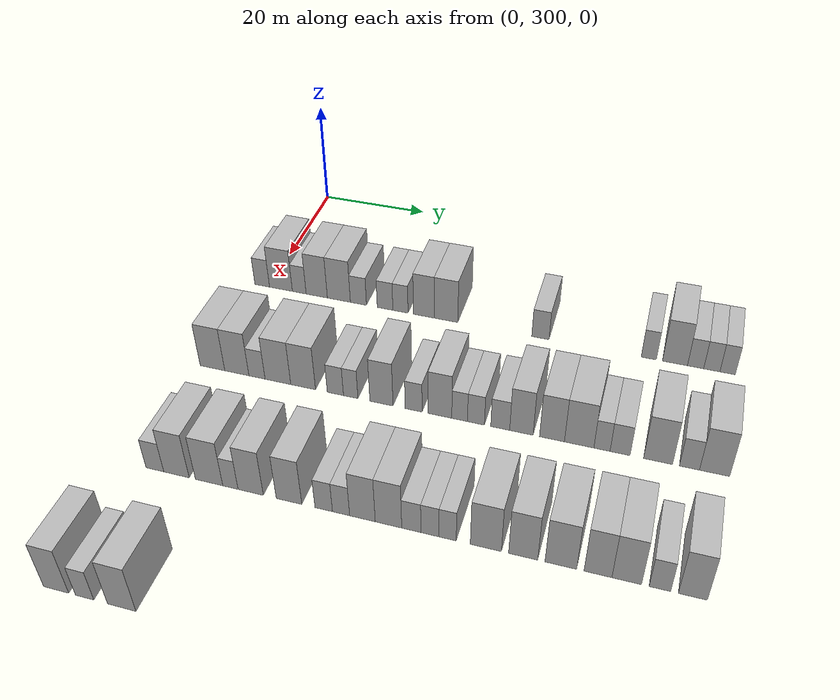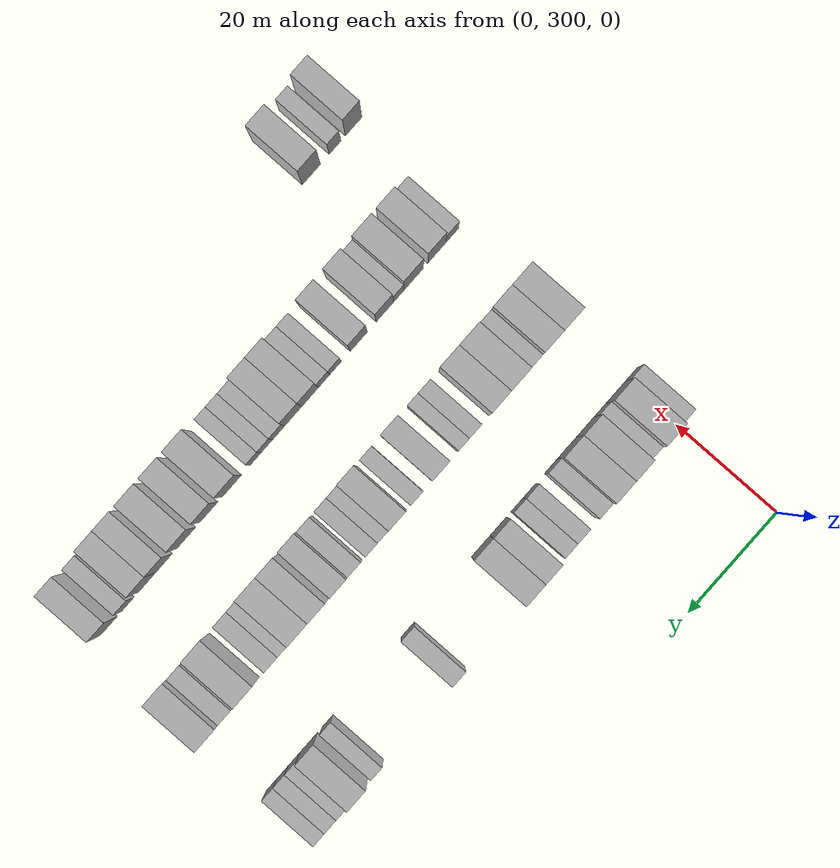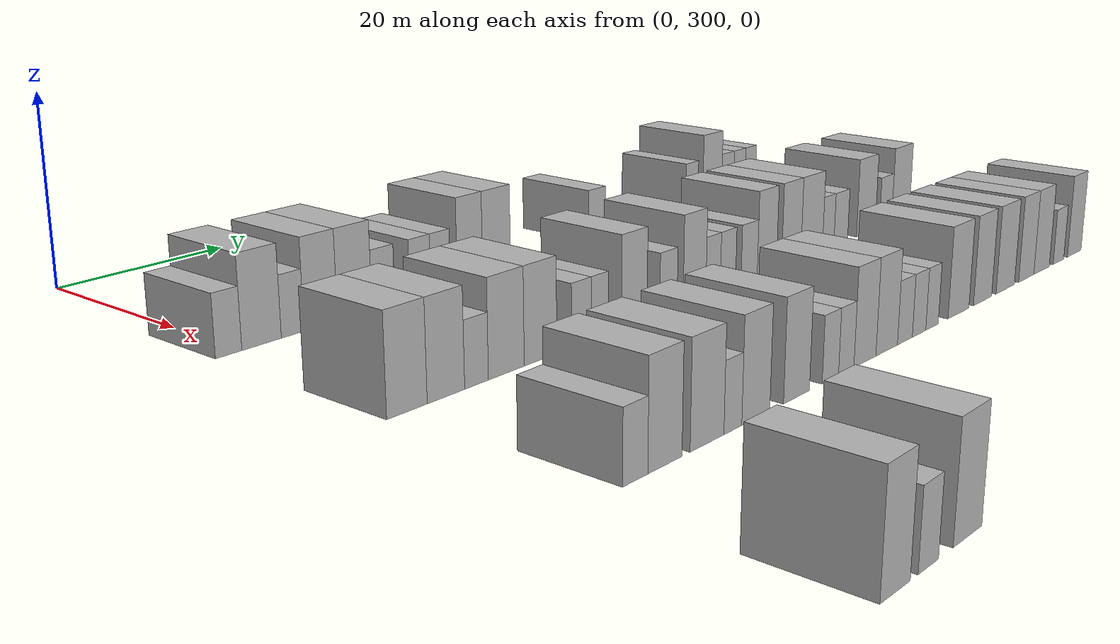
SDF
<sdf version="1.6">
 <world name="default">
  <model name="building_164">
   <static>1</static>
   <pose>25.0000 298.7448 0 0.000000 0.000000 0.000000</pose>
   <link name="link">
    <pose>0 0 3.00 0 0 0</pose>
    <collision name="collision"><geometry><box><size>10.0000 2.8395 6.0000</size></box></geometry></collision>
    <visual name="visual">
     <cast_shadows>0</cast_shadows>
     <geometry><box><size>10.0000 2.8395 6.0000</size></box></geometry>
     <material>
      <script>
       <uri>model://HANNAS_wall/materials/scripts</uri>
       <uri>model://HANNAS_wall/materials/textures</uri>
       <name>vrc/HANNAS_wall</name>
      </script>
     </material>
    </visual>
   </link>
  </model>
  <model name="building_165">
   <static>1</static>
   <pose>25.0000 302.3678 0 0.000000 0.000000 0.000000</pose>
   <link name="link">
    <pose>0 0 4.50 0 0 0</pose>
    <collision name="collision"><geometry><box><size>10.0000 4.4065 9.0000</size></box></geometry></collision>
    <visual name="visual">
     <cast_shadows>0</cast_shadows>
     <geometry><box><size>10.0000 4.4065 9.0000</size></box></geometry>
     <material>
      <script>
       <uri>model://HANNAS_wall/materials/scripts</uri>
       <uri>model://HANNAS_wall/materials/textures</uri>
       <name>vrc/HANNAS_wall</name>
      </script>
     </material>
    </visual>
   </link>
  </model>
  <model name="building_166">
   <static>1</static>
   <pose>25.0000 305.8873 0 0.000000 0.000000 0.000000</pose>
   <link name="link">
    <pose>0 0 3.00 0 0 0</pose>
    <collision name="collision"><geometry><box><size>10.0000 2.6325 6.0000</size></box></geometry></collision>
    <visual name="visual">
     <cast_shadows>0</cast_shadows>
     <geometry><box><size>10.0000 2.6325 6.0000</size></box></geometry>
     <material>
      <script>
       <uri>model://HANNAS_wall/materials/scripts</uri>
       <uri>model://HANNAS_wall/materials/textures</uri>
       <name>vrc/HANNAS_wall</name>
      </script>
     </material>
    </visual>
   </link>
  </model>
  <model name="building_167">
   <static>1</static>
   <pose>25.0000 309.2179 0 0.000000 0.000000 0.000000</pose>
   <link name="link">
    <pose>0 0 4.50 0 0 0</pose>
    <collision name="collision"><geometry><box><size>10.0000 4.0286 9.0000</size></box></geometry></collision>
    <visual name="visual">
     <cast_shadows>0</cast_shadows>
     <geometry><box><size>10.0000 4.0286 9.0000</size></box></geometry>
     <material>
      <script>
       <uri>model://HANNAS_wall/materials/scripts</uri>
       <uri>model://HANNAS_wall/materials/textures</uri>
       <name>vrc/HANNAS_wall</name>
      </script>
     </material>
    </visual>
   </link>
  </model>
  <model name="building_168">
   <static>1</static>
   <pose>25.0000 313.3952 0 0.000000 0.000000 0.000000</pose>
   <link name="link">
    <pose>0 0 4.50 0 0 0</pose>
    <collision name="collision"><geometry><box><size>10.0000 4.3261 9.0000</size></box></geometry></collision>
    <visual name="visual">
     <cast_shadows>0</cast_shadows>
     <geometry><box><size>10.0000 4.3261 9.0000</size></box></geometry>
     <material>
      <script>
       <uri>model://HANNAS_wall/materials/scripts</uri>
       <uri>model://HANNAS_wall/materials/textures</uri>
       <name>vrc/HANNAS_wall</name>
      </script>
     </material>
    </visual>
   </link>
  </model>
  <model name="building_169">
   <static>1</static>
   <pose>25.0000 317.0565 0 0.000000 0.000000 0.000000</pose>
   <link name="link">
    <pose>0 0 3.00 0 0 0</pose>
    <collision name="collision"><geometry><box><size>10.0000 2.9965 6.0000</size></box></geometry></collision>
    <visual name="visual">
     <cast_shadows>0</cast_shadows>
     <geometry><box><size>10.0000 2.9965 6.0000</size></box></geometry>
     <material>
      <script>
       <uri>model://HANNAS_wall/materials/scripts</uri>
       <uri>model://HANNAS_wall/materials/textures</uri>
       <name>vrc/HANNAS_wall</name>
      </script>
     </material>
    </visual>
   </link>
  </model>
  <model name="building_170">
   <static>1</static>
   <pose>25.0000 321.9890 0 0.000000 0.000000 0.000000</pose>
   <link name="link">
    <pose>0 0 3.00 0 0 0</pose>
    <collision name="collision"><geometry><box><size>10.0000 2.8684 6.0000</size></box></geometry></collision>
    <visual name="visual">
     <cast_shadows>0</cast_shadows>
     <geometry><box><size>10.0000 2.8684 6.0000</size></box></geometry>
     <material>
      <script>
       <uri>model://HANNAS_wall/materials/scripts</uri>
       <uri>model://HANNAS_wall/materials/textures</uri>
       <name>vrc/HANNAS_wall</name>
      </script>
     </material>
    </visual>
   </link>
  </model>
  <model name="building_171">
   <static>1</static>
   <pose>25.0000 324.8100 0 0.000000 0.000000 0.000000</pose>
   <link name="link">
    <pose>0 0 3.00 0 0 0</pose>
    <collision name="collision"><geometry><box><size>10.0000 2.7737 6.0000</size></box></geometry></collision>
    <visual name="visual">
     <cast_shadows>0</cast_shadows>
     <geometry><box><size>10.0000 2.7737 6.0000</size></box></geometry>
     <material>
      <script>
       <uri>model://HANNAS_wall/materials/scripts</uri>
       <uri>model://HANNAS_wall/materials/textures</uri>
       <name>vrc/HANNAS_wall</name>
      </script>
     </material>
    </visual>
   </link>
  </model>
  <model name="building_172">
   <static>1</static>
   <pose>25.0000 329.0624 0 0.000000 0.000000 0.000000</pose>
   <link name="link">
    <pose>0 0 4.50 0 0 0</pose>
    <collision name="collision"><geometry><box><size>10.0000 3.7311 9.0000</size></box></geometry></collision>
    <visual name="visual">
     <cast_shadows>0</cast_shadows>
     <geometry><box><size>10.0000 3.7311 9.0000</size></box></geometry>
     <material>
      <script>
       <uri>model://HANNAS_wall/materials/scripts</uri>
       <uri>model://HANNAS_wall/materials/textures</uri>
       <name>vrc/HANNAS_wall</name>
      </script>
     </material>
    </visual>
   </link>
  </model>
  <model name="building_173">
   <static>1</static>
   <pose>25.0000 333.0505 0 0.000000 0.000000 0.000000</pose>
   <link name="link">
    <pose>0 0 4.50 0 0 0</pose>
    <collision name="collision"><geometry><box><size>10.0000 4.2452 9.0000</size></box></geometry></collision>
    <visual name="visual">
     <cast_shadows>0</cast_shadows>
     <geometry><box><size>10.0000 4.2452 9.0000</size></box></geometry>
     <material>
      <script>
       <uri>model://HANNAS_wall/materials/scripts</uri>
       <uri>model://HANNAS_wall/materials/textures</uri>
       <name>vrc/HANNAS_wall</name>
      </script>
     </material>
    </visual>
   </link>
  </model>
  <model name="building_174">
   <static>1</static>
   <pose>25.0000 349.6298 0 0.000000 0.000000 0.000000</pose>
   <link name="link">
    <pose>0 0 3.00 0 0 0</pose>
    <collision name="collision"><geometry><box><size>10.0000 2.9711 6.0000</size></box></geometry></collision>
    <visual name="visual">
     <cast_shadows>0</cast_shadows>
     <geometry><box><size>10.0000 2.9711 6.0000</size></box></geometry>
     <material>
      <script>
       <uri>model://HANNAS_wall/materials/scripts</uri>
       <uri>model://HANNAS_wall/materials/textures</uri>
       <name>vrc/HANNAS_wall</name>
      </script>
     </material>
    </visual>
   </link>
  </model>
  <model name="building_175">
   <static>1</static>
   <pose>25.0000 367.8563 0 0.000000 0.000000 0.000000</pose>
   <link name="link">
    <pose>0 0 3.00 0 0 0</pose>
    <collision name="collision"><geometry><box><size>10.0000 2.4939 6.0000</size></box></geometry></collision>
    <visual name="visual">
     <cast_shadows>0</cast_shadows>
     <geometry><box><size>10.0000 2.4939 6.0000</size></box></geometry>
     <material>
      <script>
       <uri>model://HANNAS_wall/materials/scripts</uri>
       <uri>model://HANNAS_wall/materials/textures</uri>
       <name>vrc/HANNAS_wall</name>
      </script>
     </material>
    </visual>
   </link>
  </model>
  <model name="building_176">
   <static>1</static>
   <pose>25.0000 372.1307 0 0.000000 0.000000 0.000000</pose>
   <link name="link">
    <pose>0 0 4.50 0 0 0</pose>
    <collision name="collision"><geometry><box><size>10.0000 4.0548 9.0000</size></box></geometry></collision>
    <visual name="visual">
     <cast_shadows>0</cast_shadows>
     <geometry><box><size>10.0000 4.0548 9.0000</size></box></geometry>
     <material>
      <script>
       <uri>model://HANNAS_wall/materials/scripts</uri>
       <uri>model://HANNAS_wall/materials/textures</uri>
       <name>vrc/HANNAS_wall</name>
      </script>
     </material>
    </visual>
   </link>
  </model>
  <model name="building_177">
   <static>1</static>
   <pose>25.0000 375.4648 0 0.000000 0.000000 0.000000</pose>
   <link name="link">
    <pose>0 0 3.00 0 0 0</pose>
    <collision name="collision"><geometry><box><size>10.0000 2.6135 6.0000</size></box></geometry></collision>
    <visual name="visual">
     <cast_shadows>0</cast_shadows>
     <geometry><box><size>10.0000 2.6135 6.0000</size></box></geometry>
     <material>
      <script>
       <uri>model://HANNAS_wall/materials/scripts</uri>
       <uri>model://HANNAS_wall/materials/textures</uri>
       <name>vrc/HANNAS_wall</name>
      </script>
     </material>
    </visual>
   </link>
  </model>
  <model name="building_178">
   <static>1</static>
   <pose>25.0000 378.0670 0 0.000000 0.000000 0.000000</pose>
   <link name="link">
    <pose>0 0 3.00 0 0 0</pose>
    <collision name="collision"><geometry><box><size>10.0000 2.5909 6.0000</size></box></geometry></collision>
    <visual name="visual">
     <cast_shadows>0</cast_shadows>
     <geometry><box><size>10.0000 2.5909 6.0000</size></box></geometry>
     <material>
      <script>
       <uri>model://HANNAS_wall/materials/scripts</uri>
       <uri>model://HANNAS_wall/materials/textures</uri>
       <name>vrc/HANNAS_wall</name>
      </script>
     </material>
    </visual>
   </link>
  </model>
  <model name="building_179">
   <static>1</static>
   <pose>25.0000 380.5888 0 0.000000 0.000000 0.000000</pose>
   <link name="link">
    <pose>0 0 3.00 0 0 0</pose>
    <collision name="collision"><geometry><box><size>10.0000 2.4526 6.0000</size></box></geometry></collision>
    <visual name="visual">
     <cast_shadows>0</cast_shadows>
     <geometry><box><size>10.0000 2.4526 6.0000</size></box></geometry>
     <material>
      <script>
       <uri>model://HANNAS_wall/materials/scripts</uri>
       <uri>model://HANNAS_wall/materials/textures</uri>
       <name>vrc/HANNAS_wall</name>
      </script>
     </material>
    </visual>
   </link>
  </model>
  <model name="building_344">
   <static>1</static>
   <pose>47.0000 299.5339 0 0.000000 0.000000 0.000000</pose>
   <link name="link">
    <pose>0 0 4.50 0 0 0</pose>
    <collision name="collision"><geometry><box><size>10.0000 4.3896 9.0000</size></box></geometry></collision>
    <visual name="visual">
     <cast_shadows>0</cast_shadows>
     <geometry><box><size>10.0000 4.3896 9.0000</size></box></geometry>
     <material>
      <script>
       <uri>model://HANNAS_wall/materials/scripts</uri>
       <uri>model://HANNAS_wall/materials/textures</uri>
       <name>vrc/HANNAS_wall</name>
      </script>
     </material>
    </visual>
   </link>
  </model>
  <model name="building_345">
   <static>1</static>
   <pose>47.0000 303.8648 0 0.000000 0.000000 0.000000</pose>
   <link name="link">
    <pose>0 0 4.50 0 0 0</pose>
    <collision name="collision"><geometry><box><size>10.0000 4.2723 9.0000</size></box></geometry></collision>
    <visual name="visual">
     <cast_shadows>0</cast_shadows>
     <geometry><box><size>10.0000 4.2723 9.0000</size></box></geometry>
     <material>
      <script>
       <uri>model://HANNAS_wall/materials/scripts</uri>
       <uri>model://HANNAS_wall/materials/textures</uri>
       <name>vrc/HANNAS_wall</name>
      </script>
     </material>
    </visual>
   </link>
  </model>
  <model name="building_346">
   <static>1</static>
   <pose>47.0000 307.4149 0 0.000000 0.000000 0.000000</pose>
   <link name="link">
    <pose>0 0 3.00 0 0 0</pose>
    <collision name="collision"><geometry><box><size>10.0000 2.8280 6.0000</size></box></geometry></collision>
    <visual name="visual">
     <cast_shadows>0</cast_shadows>
     <geometry><box><size>10.0000 2.8280 6.0000</size></box></geometry>
     <material>
      <script>
       <uri>model://HANNAS_wall/materials/scripts</uri>
       <uri>model://HANNAS_wall/materials/textures</uri>
       <name>vrc/HANNAS_wall</name>
      </script>
     </material>
    </visual>
   </link>
  </model>
  <model name="building_347">
   <static>1</static>
   <pose>47.0000 311.0594 0 0.000000 0.000000 0.000000</pose>
   <link name="link">
    <pose>0 0 4.50 0 0 0</pose>
    <collision name="collision"><geometry><box><size>10.0000 4.4609 9.0000</size></box></geometry></collision>
    <visual name="visual">
     <cast_shadows>0</cast_shadows>
     <geometry><box><size>10.0000 4.4609 9.0000</size></box></geometry>
     <material>
      <script>
       <uri>model://HANNAS_wall/materials/scripts</uri>
       <uri>model://HANNAS_wall/materials/textures</uri>
       <name>vrc/HANNAS_wall</name>
      </script>
     </material>
    </visual>
   </link>
  </model>
  <model name="building_348">
   <static>1</static>
   <pose>47.0000 315.4157 0 0.000000 0.000000 0.000000</pose>
   <link name="link">
    <pose>0 0 4.50 0 0 0</pose>
    <collision name="collision"><geometry><box><size>10.0000 4.2518 9.0000</size></box></geometry></collision>
    <visual name="visual">
     <cast_shadows>0</cast_shadows>
     <geometry><box><size>10.0000 4.2518 9.0000</size></box></geometry>
     <material>
      <script>
       <uri>model://HANNAS_wall/materials/scripts</uri>
       <uri>model://HANNAS_wall/materials/textures</uri>
       <name>vrc/HANNAS_wall</name>
      </script>
     </material>
    </visual>
   </link>
  </model>
  <model name="building_349">
   <static>1</static>
   <pose>47.0000 320.9104 0 0.000000 0.000000 0.000000</pose>
   <link name="link">
    <pose>0 0 3.00 0 0 0</pose>
    <collision name="collision"><geometry><box><size>10.0000 2.7376 6.0000</size></box></geometry></collision>
    <visual name="visual">
     <cast_shadows>0</cast_shadows>
     <geometry><box><size>10.0000 2.7376 6.0000</size></box></geometry>
     <material>
      <script>
       <uri>model://HANNAS_wall/materials/scripts</uri>
       <uri>model://HANNAS_wall/materials/textures</uri>
       <name>vrc/HANNAS_wall</name>
      </script>
     </material>
    </visual>
   </link>
  </model>
  <model name="building_350">
   <static>1</static>
   <pose>47.0000 323.4926 0 0.000000 0.000000 0.000000</pose>
   <link name="link">
    <pose>0 0 3.00 0 0 0</pose>
    <collision name="collision"><geometry><box><size>10.0000 2.4269 6.0000</size></box></geometry></collision>
    <visual name="visual">
     <cast_shadows>0</cast_shadows>
     <geometry><box><size>10.0000 2.4269 6.0000</size></box></geometry>
     <material>
      <script>
       <uri>model://HANNAS_wall/materials/scripts</uri>
       <uri>model://HANNAS_wall/materials/textures</uri>
       <name>vrc/HANNAS_wall</name>
      </script>
     </material>
    </visual>
   </link>
  </model>
  <model name="building_351">
   <static>1</static>
   <pose>47.0000 328.6227 0 0.000000 0.000000 0.000000</pose>
   <link name="link">
    <pose>0 0 4.50 0 0 0</pose>
    <collision name="collision"><geometry><box><size>10.0000 3.8331 9.0000</size></box></geometry></collision>
    <visual name="visual">
     <cast_shadows>0</cast_shadows>
     <geometry><box><size>10.0000 3.8331 9.0000</size></box></geometry>
     <material>
      <script>
       <uri>model://HANNAS_wall/materials/scripts</uri>
       <uri>model://HANNAS_wall/materials/textures</uri>
       <name>vrc/HANNAS_wall</name>
      </script>
     </material>
    </visual>
   </link>
  </model>
  <model name="building_352">
   <static>1</static>
   <pose>47.0000 333.9192 0 0.000000 0.000000 0.000000</pose>
   <link name="link">
    <pose>0 0 3.00 0 0 0</pose>
    <collision name="collision"><geometry><box><size>10.0000 2.7599 6.0000</size></box></geometry></collision>
    <visual name="visual">
     <cast_shadows>0</cast_shadows>
     <geometry><box><size>10.0000 2.7599 6.0000</size></box></geometry>
     <material>
      <script>
       <uri>model://HANNAS_wall/materials/scripts</uri>
       <uri>model://HANNAS_wall/materials/textures</uri>
       <name>vrc/HANNAS_wall</name>
      </script>
     </material>
    </visual>
   </link>
  </model>
  <model name="building_353">
   <static>1</static>
   <pose>47.0000 338.1962 0 0.000000 0.000000 0.000000</pose>
   <link name="link">
    <pose>0 0 4.50 0 0 0</pose>
    <collision name="collision"><geometry><box><size>10.0000 3.7942 9.0000</size></box></geometry></collision>
    <visual name="visual">
     <cast_shadows>0</cast_shadows>
     <geometry><box><size>10.0000 3.7942 9.0000</size></box></geometry>
     <material>
      <script>
       <uri>model://HANNAS_wall/materials/scripts</uri>
       <uri>model://HANNAS_wall/materials/textures</uri>
       <name>vrc/HANNAS_wall</name>
      </script>
     </material>
    </visual>
   </link>
  </model>
  <model name="building_354">
   <static>1</static>
   <pose>47.0000 341.3433 0 0.000000 0.000000 0.000000</pose>
   <link name="link">
    <pose>0 0 3.00 0 0 0</pose>
    <collision name="collision"><geometry><box><size>10.0000 2.5001 6.0000</size></box></geometry></collision>
    <visual name="visual">
     <cast_shadows>0</cast_shadows>
     <geometry><box><size>10.0000 2.5001 6.0000</size></box></geometry>
     <material>
      <script>
       <uri>model://HANNAS_wall/materials/scripts</uri>
       <uri>model://HANNAS_wall/materials/textures</uri>
       <name>vrc/HANNAS_wall</name>
      </script>
     </material>
    </visual>
   </link>
  </model>
  <model name="building_355">
   <static>1</static>
   <pose>47.0000 343.9466 0 0.000000 0.000000 0.000000</pose>
   <link name="link">
    <pose>0 0 3.00 0 0 0</pose>
    <collision name="collision"><geometry><box><size>10.0000 2.7065 6.0000</size></box></geometry></collision>
    <visual name="visual">
     <cast_shadows>0</cast_shadows>
     <geometry><box><size>10.0000 2.7065 6.0000</size></box></geometry>
     <material>
      <script>
       <uri>model://HANNAS_wall/materials/scripts</uri>
       <uri>model://HANNAS_wall/materials/textures</uri>
       <name>vrc/HANNAS_wall</name>
      </script>
     </material>
    </visual>
   </link>
  </model>
  <model name="building_356">
   <static>1</static>
   <pose>47.0000 347.7876 0 0.000000 0.000000 0.000000</pose>
   <link name="link">
    <pose>0 0 3.00 0 0 0</pose>
    <collision name="collision"><geometry><box><size>10.0000 2.9754 6.0000</size></box></geometry></collision>
    <visual name="visual">
     <cast_shadows>0</cast_shadows>
     <geometry><box><size>10.0000 2.9754 6.0000</size></box></geometry>
     <material>
      <script>
       <uri>model://HANNAS_wall/materials/scripts</uri>
       <uri>model://HANNAS_wall/materials/textures</uri>
       <name>vrc/HANNAS_wall</name>
      </script>
     </material>
    </visual>
   </link>
  </model>
  <model name="building_357">
   <static>1</static>
   <pose>47.0000 351.0989 0 0.000000 0.000000 0.000000</pose>
   <link name="link">
    <pose>0 0 4.50 0 0 0</pose>
    <collision name="collision"><geometry><box><size>10.0000 3.6473 9.0000</size></box></geometry></collision>
    <visual name="visual">
     <cast_shadows>0</cast_shadows>
     <geometry><box><size>10.0000 3.6473 9.0000</size></box></geometry>
     <material>
      <script>
       <uri>model://HANNAS_wall/materials/scripts</uri>
       <uri>model://HANNAS_wall/materials/textures</uri>
       <name>vrc/HANNAS_wall</name>
      </script>
     </material>
    </visual>
   </link>
  </model>
  <model name="building_358">
   <static>1</static>
   <pose>47.0000 355.8356 0 0.000000 0.000000 0.000000</pose>
   <link name="link">
    <pose>0 0 4.50 0 0 0</pose>
    <collision name="collision"><geometry><box><size>10.0000 3.8260 9.0000</size></box></geometry></collision>
    <visual name="visual">
     <cast_shadows>0</cast_shadows>
     <geometry><box><size>10.0000 3.8260 9.0000</size></box></geometry>
     <material>
      <script>
       <uri>model://HANNAS_wall/materials/scripts</uri>
       <uri>model://HANNAS_wall/materials/textures</uri>
       <name>vrc/HANNAS_wall</name>
      </script>
     </material>
    </visual>
   </link>
  </model>
  <model name="building_359">
   <static>1</static>
   <pose>47.0000 359.9868 0 0.000000 0.000000 0.000000</pose>
   <link name="link">
    <pose>0 0 4.50 0 0 0</pose>
    <collision name="collision"><geometry><box><size>10.0000 4.4764 9.0000</size></box></geometry></collision>
    <visual name="visual">
     <cast_shadows>0</cast_shadows>
     <geometry><box><size>10.0000 4.4764 9.0000</size></box></geometry>
     <material>
      <script>
       <uri>model://HANNAS_wall/materials/scripts</uri>
       <uri>model://HANNAS_wall/materials/textures</uri>
       <name>vrc/HANNAS_wall</name>
      </script>
     </material>
    </visual>
   </link>
  </model>
  <model name="building_360">
   <static>1</static>
   <pose>47.0000 363.4442 0 0.000000 0.000000 0.000000</pose>
   <link name="link">
    <pose>0 0 3.00 0 0 0</pose>
    <collision name="collision"><geometry><box><size>10.0000 2.4384 6.0000</size></box></geometry></collision>
    <visual name="visual">
     <cast_shadows>0</cast_shadows>
     <geometry><box><size>10.0000 2.4384 6.0000</size></box></geometry>
     <material>
      <script>
       <uri>model://HANNAS_wall/materials/scripts</uri>
       <uri>model://HANNAS_wall/materials/textures</uri>
       <name>vrc/HANNAS_wall</name>
      </script>
     </material>
    </visual>
   </link>
  </model>
  <model name="building_361">
   <static>1</static>
   <pose>47.0000 366.1602 0 0.000000 0.000000 0.000000</pose>
   <link name="link">
    <pose>0 0 3.00 0 0 0</pose>
    <collision name="collision"><geometry><box><size>10.0000 2.9937 6.0000</size></box></geometry></collision>
    <visual name="visual">
     <cast_shadows>0</cast_shadows>
     <geometry><box><size>10.0000 2.9937 6.0000</size></box></geometry>
     <material>
      <script>
       <uri>model://HANNAS_wall/materials/scripts</uri>
       <uri>model://HANNAS_wall/materials/textures</uri>
       <name>vrc/HANNAS_wall</name>
      </script>
     </material>
    </visual>
   </link>
  </model>
  <model name="building_362">
   <static>1</static>
   <pose>47.0000 371.7882 0 0.000000 0.000000 0.000000</pose>
   <link name="link">
    <pose>0 0 4.50 0 0 0</pose>
    <collision name="collision"><geometry><box><size>10.0000 4.2623 9.0000</size></box></geometry></collision>
    <visual name="visual">
     <cast_shadows>0</cast_shadows>
     <geometry><box><size>10.0000 4.2623 9.0000</size></box></geometry>
     <material>
      <script>
       <uri>model://HANNAS_wall/materials/scripts</uri>
       <uri>model://HANNAS_wall/materials/textures</uri>
       <name>vrc/HANNAS_wall</name>
      </script>
     </material>
    </visual>
   </link>
  </model>
  <model name="building_363">
   <static>1</static>
   <pose>47.0000 376.3739 0 0.000000 0.000000 0.000000</pose>
   <link name="link">
    <pose>0 0 3.00 0 0 0</pose>
    <collision name="collision"><geometry><box><size>10.0000 2.9090 6.0000</size></box></geometry></collision>
    <visual name="visual">
     <cast_shadows>0</cast_shadows>
     <geometry><box><size>10.0000 2.9090 6.0000</size></box></geometry>
     <material>
      <script>
       <uri>model://HANNAS_wall/materials/scripts</uri>
       <uri>model://HANNAS_wall/materials/textures</uri>
       <name>vrc/HANNAS_wall</name>
      </script>
     </material>
    </visual>
   </link>
  </model>
  <model name="building_364">
   <static>1</static>
   <pose>47.0000 380.0017 0 0.000000 0.000000 0.000000</pose>
   <link name="link">
    <pose>0 0 4.50 0 0 0</pose>
    <collision name="collision"><geometry><box><size>10.0000 4.3467 9.0000</size></box></geometry></collision>
    <visual name="visual">
     <cast_shadows>0</cast_shadows>
     <geometry><box><size>10.0000 4.3467 9.0000</size></box></geometry>
     <material>
      <script>
       <uri>model://HANNAS_wall/materials/scripts</uri>
       <uri>model://HANNAS_wall/materials/textures</uri>
       <name>vrc/HANNAS_wall</name>
      </script>
     </material>
    </visual>
   </link>
  </model>
  <model name="building_529">
   <static>1</static>
   <pose>69.0000 300.8608 0 0.000000 0.000000 0.000000</pose>
   <link name="link">
    <pose>0 0 3.00 0 0 0</pose>
    <collision name="collision"><geometry><box><size>10.0000 2.8874 6.0000</size></box></geometry></collision>
    <visual name="visual">
     <cast_shadows>0</cast_shadows>
     <geometry><box><size>10.0000 2.8874 6.0000</size></box></geometry>
     <material>
      <script>
       <uri>model://HANNAS_wall/materials/scripts</uri>
       <uri>model://HANNAS_wall/materials/textures</uri>
       <name>vrc/HANNAS_wall</name>
      </script>
     </material>
    </visual>
   </link>
  </model>
  <model name="building_530">
   <static>1</static>
   <pose>69.0000 304.3549 0 0.000000 0.000000 0.000000</pose>
   <link name="link">
    <pose>0 0 4.50 0 0 0</pose>
    <collision name="collision"><geometry><box><size>10.0000 4.1009 9.0000</size></box></geometry></collision>
    <visual name="visual">
     <cast_shadows>0</cast_shadows>
     <geometry><box><size>10.0000 4.1009 9.0000</size></box></geometry>
     <material>
      <script>
       <uri>model://HANNAS_wall/materials/scripts</uri>
       <uri>model://HANNAS_wall/materials/textures</uri>
       <name>vrc/HANNAS_wall</name>
      </script>
     </material>
    </visual>
   </link>
  </model>
  <model name="building_531">
   <static>1</static>
   <pose>69.0000 309.5823 0 0.000000 0.000000 0.000000</pose>
   <link name="link">
    <pose>0 0 4.50 0 0 0</pose>
    <collision name="collision"><geometry><box><size>10.0000 4.3538 9.0000</size></box></geometry></collision>
    <visual name="visual">
     <cast_shadows>0</cast_shadows>
     <geometry><box><size>10.0000 4.3538 9.0000</size></box></geometry>
     <material>
      <script>
       <uri>model://HANNAS_wall/materials/scripts</uri>
       <uri>model://HANNAS_wall/materials/textures</uri>
       <name>vrc/HANNAS_wall</name>
      </script>
     </material>
    </visual>
   </link>
  </model>
  <model name="building_532">
   <static>1</static>
   <pose>69.0000 312.9630 0 0.000000 0.000000 0.000000</pose>
   <link name="link">
    <pose>0 0 3.00 0 0 0</pose>
    <collision name="collision"><geometry><box><size>10.0000 2.4078 6.0000</size></box></geometry></collision>
    <visual name="visual">
     <cast_shadows>0</cast_shadows>
     <geometry><box><size>10.0000 2.4078 6.0000</size></box></geometry>
     <material>
      <script>
       <uri>model://HANNAS_wall/materials/scripts</uri>
       <uri>model://HANNAS_wall/materials/textures</uri>
       <name>vrc/HANNAS_wall</name>
      </script>
     </material>
    </visual>
   </link>
  </model>
  <model name="building_533">
   <static>1</static>
   <pose>69.0000 316.1335 0 0.000000 0.000000 0.000000</pose>
   <link name="link">
    <pose>0 0 4.50 0 0 0</pose>
    <collision name="collision"><geometry><box><size>10.0000 3.9331 9.0000</size></box></geometry></collision>
    <visual name="visual">
     <cast_shadows>0</cast_shadows>
     <geometry><box><size>10.0000 3.9331 9.0000</size></box></geometry>
     <material>
      <script>
       <uri>model://HANNAS_wall/materials/scripts</uri>
       <uri>model://HANNAS_wall/materials/textures</uri>
       <name>vrc/HANNAS_wall</name>
      </script>
     </material>
    </visual>
   </link>
  </model>
  <model name="building_534">
   <static>1</static>
   <pose>69.0000 322.0591 0 0.000000 0.000000 0.000000</pose>
   <link name="link">
    <pose>0 0 4.50 0 0 0</pose>
    <collision name="collision"><geometry><box><size>10.0000 3.9183 9.0000</size></box></geometry></collision>
    <visual name="visual">
     <cast_shadows>0</cast_shadows>
     <geometry><box><size>10.0000 3.9183 9.0000</size></box></geometry>
     <material>
      <script>
       <uri>model://HANNAS_wall/materials/scripts</uri>
       <uri>model://HANNAS_wall/materials/textures</uri>
       <name>vrc/HANNAS_wall</name>
      </script>
     </material>
    </visual>
   </link>
  </model>
  <model name="building_535">
   <static>1</static>
   <pose>69.0000 327.3344 0 0.000000 0.000000 0.000000</pose>
   <link name="link">
    <pose>0 0 3.00 0 0 0</pose>
    <collision name="collision"><geometry><box><size>10.0000 2.6322 6.0000</size></box></geometry></collision>
    <visual name="visual">
     <cast_shadows>0</cast_shadows>
     <geometry><box><size>10.0000 2.6322 6.0000</size></box></geometry>
     <material>
      <script>
       <uri>model://HANNAS_wall/materials/scripts</uri>
       <uri>model://HANNAS_wall/materials/textures</uri>
       <name>vrc/HANNAS_wall</name>
      </script>
     </material>
    </visual>
   </link>
  </model>
  <model name="building_536">
   <static>1</static>
   <pose>69.0000 329.9332 0 0.000000 0.000000 0.000000</pose>
   <link name="link">
    <pose>0 0 3.00 0 0 0</pose>
    <collision name="collision"><geometry><box><size>10.0000 2.5656 6.0000</size></box></geometry></collision>
    <visual name="visual">
     <cast_shadows>0</cast_shadows>
     <geometry><box><size>10.0000 2.5656 6.0000</size></box></geometry>
     <material>
      <script>
       <uri>model://HANNAS_wall/materials/scripts</uri>
       <uri>model://HANNAS_wall/materials/textures</uri>
       <name>vrc/HANNAS_wall</name>
      </script>
     </material>
    </visual>
   </link>
  </model>
  <model name="building_537">
   <static>1</static>
   <pose>69.0000 333.1134 0 0.000000 0.000000 0.000000</pose>
   <link name="link">
    <pose>0 0 4.50 0 0 0</pose>
    <collision name="collision"><geometry><box><size>10.0000 3.7947 9.0000</size></box></geometry></collision>
    <visual name="visual">
     <cast_shadows>0</cast_shadows>
     <geometry><box><size>10.0000 3.7947 9.0000</size></box></geometry>
     <material>
      <script>
       <uri>model://HANNAS_wall/materials/scripts</uri>
       <uri>model://HANNAS_wall/materials/textures</uri>
       <name>vrc/HANNAS_wall</name>
      </script>
     </material>
    </visual>
   </link>
  </model>
  <model name="building_538">
   <static>1</static>
   <pose>69.0000 336.9512 0 0.000000 0.000000 0.000000</pose>
   <link name="link">
    <pose>0 0 4.50 0 0 0</pose>
    <collision name="collision"><geometry><box><size>10.0000 3.8808 9.0000</size></box></geometry></collision>
    <visual name="visual">
     <cast_shadows>0</cast_shadows>
     <geometry><box><size>10.0000 3.8808 9.0000</size></box></geometry>
     <material>
      <script>
       <uri>model://HANNAS_wall/materials/scripts</uri>
       <uri>model://HANNAS_wall/materials/textures</uri>
       <name>vrc/HANNAS_wall</name>
      </script>
     </material>
    </visual>
   </link>
  </model>
  <model name="building_539">
   <static>1</static>
   <pose>69.0000 340.2825 0 0.000000 0.000000 0.000000</pose>
   <link name="link">
    <pose>0 0 3.00 0 0 0</pose>
    <collision name="collision"><geometry><box><size>10.0000 2.7818 6.0000</size></box></geometry></collision>
    <visual name="visual">
     <cast_shadows>0</cast_shadows>
     <geometry><box><size>10.0000 2.7818 6.0000</size></box></geometry>
     <material>
      <script>
       <uri>model://HANNAS_wall/materials/scripts</uri>
       <uri>model://HANNAS_wall/materials/textures</uri>
       <name>vrc/HANNAS_wall</name>
      </script>
     </material>
    </visual>
   </link>
  </model>
  <model name="building_540">
   <static>1</static>
   <pose>69.0000 342.9698 0 0.000000 0.000000 0.000000</pose>
   <link name="link">
    <pose>0 0 3.00 0 0 0</pose>
    <collision name="collision"><geometry><box><size>10.0000 2.5928 6.0000</size></box></geometry></collision>
    <visual name="visual">
     <cast_shadows>0</cast_shadows>
     <geometry><box><size>10.0000 2.5928 6.0000</size></box></geometry>
     <material>
      <script>
       <uri>model://HANNAS_wall/materials/scripts</uri>
       <uri>model://HANNAS_wall/materials/textures</uri>
       <name>vrc/HANNAS_wall</name>
      </script>
     </material>
    </visual>
   </link>
  </model>
  <model name="building_541">
   <static>1</static>
   <pose>69.0000 345.4951 0 0.000000 0.000000 0.000000</pose>
   <link name="link">
    <pose>0 0 3.00 0 0 0</pose>
    <collision name="collision"><geometry><box><size>10.0000 2.4579 6.0000</size></box></geometry></collision>
    <visual name="visual">
     <cast_shadows>0</cast_shadows>
     <geometry><box><size>10.0000 2.4579 6.0000</size></box></geometry>
     <material>
      <script>
       <uri>model://HANNAS_wall/materials/scripts</uri>
       <uri>model://HANNAS_wall/materials/textures</uri>
       <name>vrc/HANNAS_wall</name>
      </script>
     </material>
    </visual>
   </link>
  </model>
  <model name="building_542">
   <static>1</static>
   <pose>69.0000 350.9092 0 0.000000 0.000000 0.000000</pose>
   <link name="link">
    <pose>0 0 4.50 0 0 0</pose>
    <collision name="collision"><geometry><box><size>10.0000 4.3702 9.0000</size></box></geometry></collision>
    <visual name="visual">
     <cast_shadows>0</cast_shadows>
     <geometry><box><size>10.0000 4.3702 9.0000</size></box></geometry>
     <material>
      <script>
       <uri>model://HANNAS_wall/materials/scripts</uri>
       <uri>model://HANNAS_wall/materials/textures</uri>
       <name>vrc/HANNAS_wall</name>
      </script>
     </material>
    </visual>
   </link>
  </model>
  <model name="building_543">
   <static>1</static>
   <pose>69.0000 356.1016 0 0.000000 0.000000 0.000000</pose>
   <link name="link">
    <pose>0 0 4.50 0 0 0</pose>
    <collision name="collision"><geometry><box><size>10.0000 4.0147 9.0000</size></box></geometry></collision>
    <visual name="visual">
     <cast_shadows>0</cast_shadows>
     <geometry><box><size>10.0000 4.0147 9.0000</size></box></geometry>
     <material>
      <script>
       <uri>model://HANNAS_wall/materials/scripts</uri>
       <uri>model://HANNAS_wall/materials/textures</uri>
       <name>vrc/HANNAS_wall</name>
      </script>
     </material>
    </visual>
   </link>
  </model>
  <model name="building_544">
   <static>1</static>
   <pose>69.0000 361.2580 0 0.000000 0.000000 0.000000</pose>
   <link name="link">
    <pose>0 0 4.50 0 0 0</pose>
    <collision name="collision"><geometry><box><size>10.0000 4.2981 9.0000</size></box></geometry></collision>
    <visual name="visual">
     <cast_shadows>0</cast_shadows>
     <geometry><box><size>10.0000 4.2981 9.0000</size></box></geometry>
     <material>
      <script>
       <uri>model://HANNAS_wall/materials/scripts</uri>
       <uri>model://HANNAS_wall/materials/textures</uri>
       <name>vrc/HANNAS_wall</name>
      </script>
     </material>
    </visual>
   </link>
  </model>
  <model name="building_545">
   <static>1</static>
   <pose>69.0000 366.2707 0 0.000000 0.000000 0.000000</pose>
   <link name="link">
    <pose>0 0 4.50 0 0 0</pose>
    <collision name="collision"><geometry><box><size>10.0000 3.7273 9.0000</size></box></geometry></collision>
    <visual name="visual">
     <cast_shadows>0</cast_shadows>
     <geometry><box><size>10.0000 3.7273 9.0000</size></box></geometry>
     <material>
      <script>
       <uri>model://HANNAS_wall/materials/scripts</uri>
       <uri>model://HANNAS_wall/materials/textures</uri>
       <name>vrc/HANNAS_wall</name>
      </script>
     </material>
    </visual>
   </link>
  </model>
  <model name="building_546">
   <static>1</static>
   <pose>69.0000 370.0927 0 0.000000 0.000000 0.000000</pose>
   <link name="link">
    <pose>0 0 4.50 0 0 0</pose>
    <collision name="collision"><geometry><box><size>10.0000 3.9167 9.0000</size></box></geometry></collision>
    <visual name="visual">
     <cast_shadows>0</cast_shadows>
     <geometry><box><size>10.0000 3.9167 9.0000</size></box></geometry>
     <material>
      <script>
       <uri>model://HANNAS_wall/materials/scripts</uri>
       <uri>model://HANNAS_wall/materials/textures</uri>
       <name>vrc/HANNAS_wall</name>
      </script>
     </material>
    </visual>
   </link>
  </model>
  <model name="building_547">
   <static>1</static>
   <pose>69.0000 374.4525 0 0.000000 0.000000 0.000000</pose>
   <link name="link">
    <pose>0 0 3.00 0 0 0</pose>
    <collision name="collision"><geometry><box><size>10.0000 2.8029 6.0000</size></box></geometry></collision>
    <visual name="visual">
     <cast_shadows>0</cast_shadows>
     <geometry><box><size>10.0000 2.8029 6.0000</size></box></geometry>
     <material>
      <script>
       <uri>model://HANNAS_wall/materials/scripts</uri>
       <uri>model://HANNAS_wall/materials/textures</uri>
       <name>vrc/HANNAS_wall</name>
      </script>
     </material>
    </visual>
   </link>
  </model>
  <model name="building_548">
   <static>1</static>
   <pose>69.0000 378.7186 0 0.000000 0.000000 0.000000</pose>
   <link name="link">
    <pose>0 0 4.50 0 0 0</pose>
    <collision name="collision"><geometry><box><size>10.0000 3.7294 9.0000</size></box></geometry></collision>
    <visual name="visual">
     <cast_shadows>0</cast_shadows>
     <geometry><box><size>10.0000 3.7294 9.0000</size></box></geometry>
     <material>
      <script>
       <uri>model://HANNAS_wall/materials/scripts</uri>
       <uri>model://HANNAS_wall/materials/textures</uri>
       <name>vrc/HANNAS_wall</name>
      </script>
     </material>
    </visual>
   </link>
  </model>
  <model name="building_715">
   <static>1</static>
   <pose>91.0000 298.2432 0 0.000000 0.000000 0.000000</pose>
   <link name="link">
    <pose>0 0 4.50 0 0 0</pose>
    <collision name="collision"><geometry><box><size>10.0000 3.7403 9.0000</size></box></geometry></collision>
    <visual name="visual">
     <cast_shadows>0</cast_shadows>
     <geometry><box><size>10.0000 3.7403 9.0000</size></box></geometry>
     <material>
      <script>
       <uri>model://HANNAS_wall/materials/scripts</uri>
       <uri>model://HANNAS_wall/materials/textures</uri>
       <name>vrc/HANNAS_wall</name>
      </script>
     </material>
    </visual>
   </link>
  </model>
  <model name="building_716">
   <static>1</static>
   <pose>91.0000 302.4613 0 0.000000 0.000000 0.000000</pose>
   <link name="link">
    <pose>0 0 3.00 0 0 0</pose>
    <collision name="collision"><geometry><box><size>10.0000 2.6960 6.0000</size></box></geometry></collision>
    <visual name="visual">
     <cast_shadows>0</cast_shadows>
     <geometry><box><size>10.0000 2.6960 6.0000</size></box></geometry>
     <material>
      <script>
       <uri>model://HANNAS_wall/materials/scripts</uri>
       <uri>model://HANNAS_wall/materials/textures</uri>
       <name>vrc/HANNAS_wall</name>
      </script>
     </material>
    </visual>
   </link>
  </model>
  <model name="building_717">
   <static>1</static>
   <pose>91.0000 307.8658 0 0.000000 0.000000 0.000000</pose>
   <link name="link">
    <pose>0 0 4.50 0 0 0</pose>
    <collision name="collision"><geometry><box><size>10.0000 4.1129 9.0000</size></box></geometry></collision>
    <visual name="visual">
     <cast_shadows>0</cast_shadows>
     <geometry><box><size>10.0000 4.1129 9.0000</size></box></geometry>
     <material>
      <script>
       <uri>model://HANNAS_wall/materials/scripts</uri>
       <uri>model://HANNAS_wall/materials/textures</uri>
       <name>vrc/HANNAS_wall</name>
      </script>
     </material>
    </visual>
   </link>
  </model>
 </world>
</sdf>
